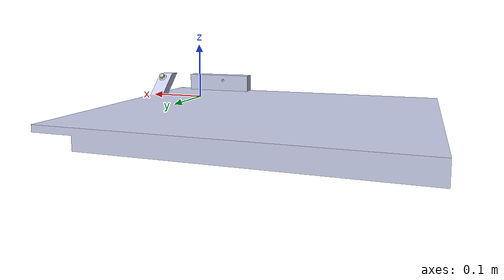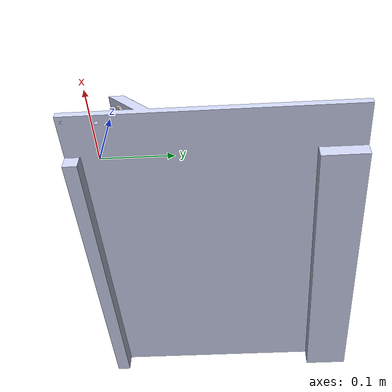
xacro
<?xml version="1.0" encoding="utf-8"?>
<robot
  name="battery_pack_describe"   xmlns:xacro="http://www.ros.org/wiki/xacro">
  <link
    name="tilt_base_link">
    <inertial>
      <origin
        xyz="-0.17823 0.0014541 -0.18254"
        rpy="0 0 0" />
      <mass
        value="2.1452" />
      <inertia
        ixx="0.04437"
        ixy="-0.00066651"
        ixz="-0.0054047"
        iyy="0.089539"
        iyz="-0.0010719"
        izz="0.045613" />
    </inertial>
    <visual>
      <origin
        xyz="0 0 0"
        rpy="0 0 0" />
      <geometry>
        <mesh filename="package://battery_pack_describe/meshes/v_battery_base_link.dae"/>
      </geometry>
      <material
        name="">
        <color
          rgba="0.79216 0.81961 0.93333 1" />
      </material>
    </visual>
    <collision>
      <origin
        xyz="0 0 0"
        rpy="0 0 0" />
      <geometry>
         <cylinder length="0.1" radius="0.02"/>
        <mesh filename="package://battery_pack_describe/meshes/v_battery_base_link.dae"/>
      </geometry>
    </collision>
  </link>

  <gazebo reference="tilt_base_link">

    <kp>1000000.0</kp>
    <kd>100.0</kd>
    <mu1>50000000000000000000.0</mu1>
    <mu2>50000000000000000000.0</mu2>
    <maxVel>0</maxVel>
    <minDepth>0.001</minDepth>
  </gazebo>

  <link
    name="tilt_bolt_Link">
    <inertial>
      <origin
        xyz="-0.00384797059870837 -2.26255488650073E-09 1.06046859488229E-09"
        rpy="0 0 0" />
      <mass
        value="0.0100430554001659" />
      <inertia
        ixx="8.16036443975724E-08"
        ixy="-2.55938176329654E-13"
        ixz="1.19279973102044E-13"
        iyy="1.22914669997157E-06"
        iyz="5.5743255490632E-14"
        izz="1.22914647668468E-06" />
    </inertial>
    <visual>
      <origin
        xyz="0 0 0"
        rpy="0 0 0" />
      <geometry>
        <mesh
          filename="package://battery_pack_describe/meshes/tilt_bolt_Link.STL" />
      </geometry>
      <material
        name="">
        <color
          rgba="0.776470588235294 0.756862745098039 0.737254901960784 1" />
      </material>
    </visual>
    <collision>
      <origin
        xyz="0 0 0"
        rpy="0 0 0" />
      <geometry>
        <box size="0.5 0.5 0.05" />

        <mesh
          filename="package://battery_pack_describe/meshes/tilt_bolt_Link.STL" />
      </geometry>
    </collision>
  </link>

<!--摩擦力参考链接，我修改了mu的大小。https://daimajiaoliu.com/daima/48713c82b900404。 http://blog.robotakao.jp/blog-entry-441.html -->

  <gazebo reference="tilt_bolt_Link">
      <maxVel>0.01</maxVel>
      <kd>1</kd>
      <maxContacts>20</maxContacts>
      <mu2>5000000000000000</mu2>
      <selfCollide>0</selfCollide>
      <mu1>5000000000000000</mu1>
      <minDepth>0</minDepth>
      <kp>1000000000000.0</kp>
    <material>Gazebo/Grey </material>

  </gazebo>

  <joint
    name="tilt_bolt_joint"
    type="continuous">
    <origin
      xyz="0.055323 0.03596 0.031184"
      rpy="0.7854 0.7854 -1.5708" />
    <parent
      link="tilt_base_link" />
    <child
      link="tilt_bolt_Link" />
    <axis
      xyz="1 0 0" />
  </joint>
  <link
    name="tilt_nut_Link">
    <inertial>
      <origin
        xyz="-8.23260327964537E-10 1.38777878078145E-17 -6.0243313042968E-07"
        rpy="0 0 0" />
      <mass
        value="0.00265736664598247" />
      <inertia
        ixx="2.79753045005072E-08"
        ixy="-7.03103520670074E-24"
        ixz="1.31797003103789E-18"
        iyy="2.79771327058772E-08"
        iyz="-4.83267733644929E-14"
        izz="4.46160415460722E-08" />
    </inertial>
    <visual>
      <origin
        xyz="0 0 0"
        rpy="0 0 0" />
      <geometry>
        <mesh
          filename="package://battery_pack_describe/meshes/tilt_nut_Link.STL" />
      </geometry>
      <material
        name="">
        <color
          rgba="0.776470588235294 0.756862745098039 0.737254901960784 1" />
      </material>
    </visual>
    <collision>
      <origin
        xyz="0 0 0"
        rpy="0 0 0" />
      <geometry>
        <mesh
          filename="package://battery_pack_describe/meshes/tilt_nut_Link.STL" />
      </geometry>
    </collision>
  </link>

      <gazebo reference="tilt_nut_Link">
    <material>Gazebo/Gray</material>
  </gazebo>

  <joint
    name="tilt_nut_joint"
    type="continuous">
    <origin
      xyz="0.055323 0.032323 0.027548"
      rpy="2.5261 -0.5236 -0.61548" />
    <parent
      link="tilt_base_link" />
    <child
      link="tilt_nut_Link" />
    <axis
      xyz="0 0 1" />
  </joint>
</robot>
